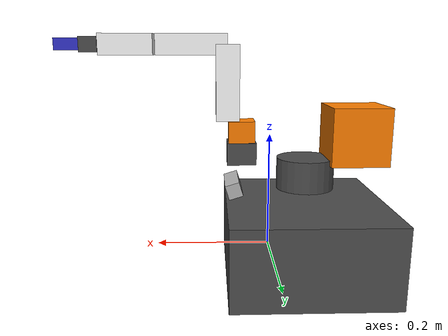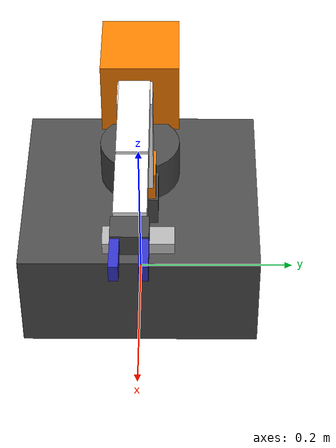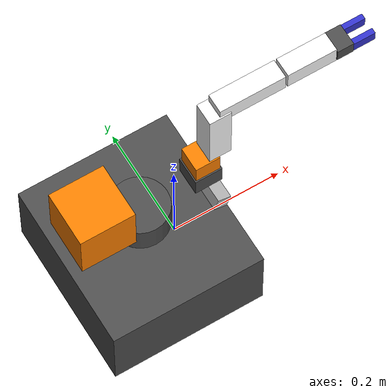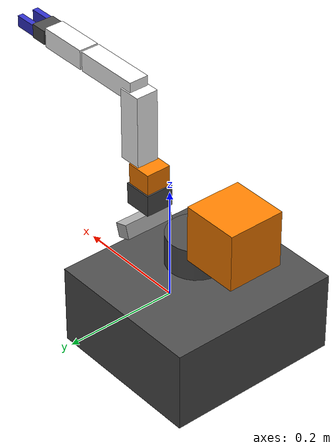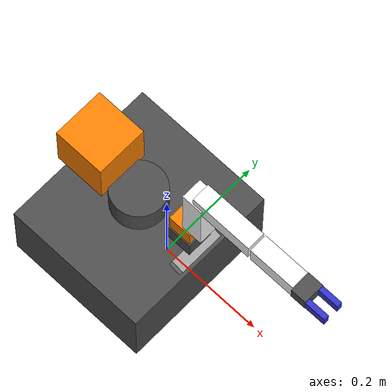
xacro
<?xml version="1.0"?>
<robot xmlns:xacro="http://www.ros.org/wiki/xacro" name="litter_bot">

  <!-- Arguments -->
  <xacro:arg name="use_sim" default="true"/>
  <xacro:arg name="use_camera" default="true"/>

  <!-- Properties -->
  <xacro:property name="wheel_radius" value="0.033"/>
  <xacro:property name="wheel_width" value="0.018"/>
  <xacro:property name="wheel_separation" value="0.287"/>
  <xacro:property name="base_x" value="0.281"/>
  <xacro:property name="base_y" value="0.306"/>
  <xacro:property name="base_z" value="0.141"/>

  <!-- Materials -->
  <material name="black">
    <color rgba="0.0 0.0 0.0 1.0"/>
  </material>
  <material name="dark_grey">
    <color rgba="0.3 0.3 0.3 1.0"/>
  </material>
  <material name="light_grey">
    <color rgba="0.7 0.7 0.7 1.0"/>
  </material>
  <material name="white">
    <color rgba="1.0 1.0 1.0 1.0"/>
  </material>
  <material name="orange">
    <color rgba="1.0 0.5 0.0 1.0"/>
  </material>
  <material name="blue">
    <color rgba="0.2 0.2 0.8 1.0"/>
  </material>

  <!-- ==================== BASE FOOTPRINT ==================== -->
  <link name="base_footprint"/>

  <joint name="base_joint" type="fixed">
    <parent link="base_footprint"/>
    <child link="base_link"/>
    <origin xyz="0 0 0.010" rpy="0 0 0"/>
  </joint>

  <!-- ==================== BASE LINK ==================== -->
  <link name="base_link">
    <visual>
      <origin xyz="-0.064 0 0.0" rpy="0 0 0"/>
      <geometry>
        <box size="${base_x} ${base_y} ${base_z}"/>
      </geometry>
      <material name="dark_grey"/>
    </visual>
    <collision>
      <origin xyz="-0.064 0 0.047" rpy="0 0 0"/>
      <geometry>
        <box size="${base_x} ${base_y} ${base_z}"/>
      </geometry>
    </collision>
    <inertial>
      <origin xyz="0 0 0" rpy="0 0 0"/>
      <mass value="1.3729096"/>
      <inertia ixx="0.0142" ixy="0" ixz="0" iyy="0.0142" iyz="0" izz="0.0238"/>
    </inertial>
  </link>

  <!-- ==================== WHEELS ==================== -->
  <xacro:macro name="wheel" params="prefix y_offset">
    <link name="${prefix}_wheel_link">
      <visual>
        <origin xyz="0 0 0" rpy="1.57 0 0"/>
        <geometry>
          <cylinder radius="${wheel_radius}" length="${wheel_width}"/>
        </geometry>
        <material name="black"/>
      </visual>
      <collision>
        <origin xyz="0 0 0" rpy="1.57 0 0"/>
        <geometry>
          <cylinder radius="${wheel_radius}" length="${wheel_width}"/>
        </geometry>
      </collision>
      <inertial>
        <origin xyz="0 0 0"/>
        <mass value="0.1"/>
        <inertia ixx="0.00005" ixy="0" ixz="0" iyy="0.00005" iyz="0" izz="0.00009"/>
      </inertial>
    </link>

    <joint name="${prefix}_wheel_joint" type="continuous">
      <parent link="base_link"/>
      <child link="${prefix}_wheel_link"/>
      <origin xyz="0 ${y_offset} 0.023" rpy="0 0 0"/>
      <axis xyz="0 1 0"/>
    </joint>
  </xacro:macro>

  <xacro:wheel prefix="left" y_offset="${wheel_separation/2}"/>
  <xacro:wheel prefix="right" y_offset="${-wheel_separation/2}"/>

  <!-- ==================== CASTER WHEEL ==================== -->
  <link name="caster_link">
    <visual>
      <origin xyz="0 0 0" rpy="0 0 0"/>
      <geometry>
        <sphere radius="0.01"/>
      </geometry>
      <material name="dark_grey"/>
    </visual>
    <collision>
      <origin xyz="0 0 0" rpy="0 0 0"/>
      <geometry>
        <sphere radius="0.01"/>
      </geometry>
    </collision>
    <inertial>
      <origin xyz="0 0 0"/>
      <mass value="0.01"/>
      <inertia ixx="0.000001" ixy="0" ixz="0" iyy="0.000001" iyz="0" izz="0.000001"/>
    </inertial>
  </link>

  <joint name="caster_joint" type="fixed">
    <parent link="base_link"/>
    <child link="caster_link"/>
    <origin xyz="-0.177 0 -0.013" rpy="0 0 0"/>
  </joint>

  <!-- ==================== LIDAR ==================== -->
  <link name="base_scan">
    <visual>
      <origin xyz="0 0 0" rpy="0 0 0"/>
      <geometry>
        <cylinder radius="0.0508" length="0.055"/>
      </geometry>
      <material name="dark_grey"/>
    </visual>
    <collision>
      <origin xyz="0 0 0" rpy="0 0 0"/>
      <geometry>
        <cylinder radius="0.0508" length="0.055"/>
      </geometry>
    </collision>
    <inertial>
      <origin xyz="0 0 0"/>
      <mass value="0.125"/>
      <inertia ixx="0.00008" ixy="0" ixz="0" iyy="0.00008" iyz="0" izz="0.00012"/>
    </inertial>
  </link>

  <joint name="scan_joint" type="fixed">
    <parent link="base_link"/>
    <child link="base_scan"/>
    <origin xyz="-0.064 0 0.122" rpy="0 0 0"/>
  </joint>

  <!-- ==================== IMU ==================== -->
  <link name="imu_link"/>

  <joint name="imu_joint" type="fixed">
    <parent link="base_link"/>
    <child link="imu_link"/>
    <origin xyz="0 0 0.068" rpy="0 0 0"/>
  </joint>

  <!-- ==================== CAMERA (RealSense D435i) ==================== -->
  <xacro:if value="$(arg use_camera)">
    <link name="camera_link">
      <visual>
        <origin xyz="0 0 0" rpy="0 0 0"/>
        <geometry>
          <box size="0.025 0.09 0.025"/>
        </geometry>
        <material name="light_grey"/>
      </visual>
      <collision>
        <origin xyz="0 0 0" rpy="0 0 0"/>
        <geometry>
          <box size="0.025 0.09 0.025"/>
        </geometry>
      </collision>
      <inertial>
        <origin xyz="0 0 0"/>
        <mass value="0.072"/>
        <inertia ixx="0.00001" ixy="0" ixz="0" iyy="0.00001" iyz="0" izz="0.00001"/>
      </inertial>
    </link>

    <joint name="camera_joint" type="fixed">
      <parent link="base_link"/>
      <child link="camera_link"/>
      <origin xyz="0.064 0 0.1" rpy="0 0.3 0"/>
    </joint>

    <link name="camera_rgb_frame"/>
    <joint name="camera_rgb_joint" type="fixed">
      <parent link="camera_link"/>
      <child link="camera_rgb_frame"/>
      <origin xyz="0 0 0" rpy="0 0 0"/>
    </joint>

    <link name="camera_depth_frame"/>
    <joint name="camera_depth_joint" type="fixed">
      <parent link="camera_link"/>
      <child link="camera_depth_frame"/>
      <origin xyz="0 0.0175 0" rpy="0 0 0"/>
    </joint>

    <link name="camera_rgb_optical_frame"/>
    <joint name="camera_rgb_optical_joint" type="fixed">
      <parent link="camera_rgb_frame"/>
      <child link="camera_rgb_optical_frame"/>
      <origin xyz="0 0 0" rpy="-1.5708 0 -1.5708"/>
    </joint>

    <link name="camera_depth_optical_frame"/>
    <joint name="camera_depth_optical_joint" type="fixed">
      <parent link="camera_depth_frame"/>
      <child link="camera_depth_optical_frame"/>
      <origin xyz="0 0 0" rpy="-1.5708 0 -1.5708"/>
    </joint>
  </xacro:if>

  <!-- ==================== OPENMANIPULATOR-X ARM ==================== -->
  <!-- Arm base mount on top of the robot -->
  <link name="arm_base_link">
    <visual>
      <origin xyz="0 0 0.019" rpy="0 0 0"/>
      <geometry>
        <box size="0.05 0.05 0.038"/>
      </geometry>
      <material name="dark_grey"/>
    </visual>
    <collision>
      <origin xyz="0 0 0.019" rpy="0 0 0"/>
      <geometry>
        <box size="0.05 0.05 0.038"/>
      </geometry>
    </collision>
    <inertial>
      <origin xyz="0 0 0.019"/>
      <mass value="0.1"/>
      <inertia ixx="0.00005" ixy="0" ixz="0" iyy="0.00005" iyz="0" izz="0.00005"/>
    </inertial>
  </link>

  <joint name="arm_base_joint" type="fixed">
    <parent link="base_link"/>
    <child link="arm_base_link"/>
    <origin xyz="0.05 0 0.141" rpy="0 0 0"/>
  </joint>

  <!-- Link 1 -->
  <link name="link1">
    <visual>
      <origin xyz="0 0 0.0185" rpy="0 0 0"/>
      <geometry>
        <box size="0.045 0.045 0.037"/>
      </geometry>
      <material name="orange"/>
    </visual>
    <collision>
      <origin xyz="0 0 0.0185" rpy="0 0 0"/>
      <geometry>
        <box size="0.045 0.045 0.037"/>
      </geometry>
    </collision>
    <inertial>
      <origin xyz="0 0 0.0185"/>
      <mass value="0.098"/>
      <inertia ixx="0.00002" ixy="0" ixz="0" iyy="0.00002" iyz="0" izz="0.00002"/>
    </inertial>
  </link>

  <joint name="joint1" type="revolute">
    <parent link="arm_base_link"/>
    <child link="link1"/>
    <origin xyz="0 0 0.038" rpy="0 0 0"/>
    <axis xyz="0 0 1"/>
    <limit lower="-2.827" upper="2.827" effort="1.0" velocity="4.8"/>
  </joint>

  <!-- Link 2 -->
  <link name="link2">
    <visual>
      <origin xyz="0.024 0 0.064" rpy="0 0 0"/>
      <geometry>
        <box size="0.04 0.04 0.128"/>
      </geometry>
      <material name="white"/>
    </visual>
    <collision>
      <origin xyz="0.024 0 0.064" rpy="0 0 0"/>
      <geometry>
        <box size="0.04 0.04 0.128"/>
      </geometry>
    </collision>
    <inertial>
      <origin xyz="0.024 0 0.064"/>
      <mass value="0.138"/>
      <inertia ixx="0.00024" ixy="0" ixz="0" iyy="0.00024" iyz="0" izz="0.00002"/>
    </inertial>
  </link>

  <joint name="joint2" type="revolute">
    <parent link="link1"/>
    <child link="link2"/>
    <origin xyz="0 0 0.037" rpy="0 0 0"/>
    <axis xyz="0 1 0"/>
    <limit lower="-1.79" upper="1.57" effort="1.0" velocity="4.8"/>
  </joint>

  <!-- Link 3 -->
  <link name="link3">
    <visual>
      <origin xyz="0.06 0 0" rpy="0 0 0"/>
      <geometry>
        <box size="0.12 0.035 0.035"/>
      </geometry>
      <material name="white"/>
    </visual>
    <collision>
      <origin xyz="0.06 0 0" rpy="0 0 0"/>
      <geometry>
        <box size="0.12 0.035 0.035"/>
      </geometry>
    </collision>
    <inertial>
      <origin xyz="0.06 0 0"/>
      <mass value="0.098"/>
      <inertia ixx="0.00001" ixy="0" ixz="0" iyy="0.00012" iyz="0" izz="0.00012"/>
    </inertial>
  </link>

  <joint name="joint3" type="revolute">
    <parent link="link2"/>
    <child link="link3"/>
    <origin xyz="0.024 0 0.128" rpy="0 0 0"/>
    <axis xyz="0 1 0"/>
    <limit lower="-0.94" upper="1.39" effort="1.0" velocity="4.8"/>
  </joint>

  <!-- Link 4 -->
  <link name="link4">
    <visual>
      <origin xyz="0.045 0 0" rpy="0 0 0"/>
      <geometry>
        <box size="0.09 0.035 0.035"/>
      </geometry>
      <material name="white"/>
    </visual>
    <collision>
      <origin xyz="0.045 0 0" rpy="0 0 0"/>
      <geometry>
        <box size="0.09 0.035 0.035"/>
      </geometry>
    </collision>
    <inertial>
      <origin xyz="0.045 0 0"/>
      <mass value="0.072"/>
      <inertia ixx="0.000007" ixy="0" ixz="0" iyy="0.00006" iyz="0" izz="0.00006"/>
    </inertial>
  </link>

  <joint name="joint4" type="revolute">
    <parent link="link3"/>
    <child link="link4"/>
    <origin xyz="0.124 0 0" rpy="0 0 0"/>
    <axis xyz="0 1 0"/>
    <limit lower="-1.79" upper="2.04" effort="1.0" velocity="4.8"/>
  </joint>

  <!-- Gripper Base -->
  <link name="gripper_base_link">
    <visual>
      <origin xyz="0.015 0 0" rpy="0 0 0"/>
      <geometry>
        <box size="0.03 0.04 0.025"/>
      </geometry>
      <material name="dark_grey"/>
    </visual>
    <collision>
      <origin xyz="0.015 0 0" rpy="0 0 0"/>
      <geometry>
        <box size="0.03 0.04 0.025"/>
      </geometry>
    </collision>
    <inertial>
      <origin xyz="0.015 0 0"/>
      <mass value="0.03"/>
      <inertia ixx="0.000002" ixy="0" ixz="0" iyy="0.000003" iyz="0" izz="0.000003"/>
    </inertial>
  </link>

  <joint name="gripper_base_joint" type="fixed">
    <parent link="link4"/>
    <child link="gripper_base_link"/>
    <origin xyz="0.09 0 0" rpy="0 0 0"/>
  </joint>

  <!-- Left Gripper Finger -->
  <link name="gripper_left_link">
    <visual>
      <origin xyz="0.02 0 0" rpy="0 0 0"/>
      <geometry>
        <box size="0.04 0.01 0.02"/>
      </geometry>
      <material name="blue"/>
    </visual>
    <collision>
      <origin xyz="0.02 0 0" rpy="0 0 0"/>
      <geometry>
        <box size="0.04 0.01 0.02"/>
      </geometry>
    </collision>
    <inertial>
      <origin xyz="0.02 0 0"/>
      <mass value="0.01"/>
      <inertia ixx="0.0000003" ixy="0" ixz="0" iyy="0.0000015" iyz="0" izz="0.0000015"/>
    </inertial>
  </link>

  <joint name="gripper_left_joint" type="prismatic">
    <parent link="gripper_base_link"/>
    <child link="gripper_left_link"/>
    <origin xyz="0.03 0.015 0" rpy="0 0 0"/>
    <axis xyz="0 1 0"/>
    <limit lower="-0.01" upper="0.019" effort="1.0" velocity="1.0"/>
  </joint>

  <!-- Right Gripper Finger -->
  <link name="gripper_right_link">
    <visual>
      <origin xyz="0.02 0 0" rpy="0 0 0"/>
      <geometry>
        <box size="0.04 0.01 0.02"/>
      </geometry>
      <material name="blue"/>
    </visual>
    <collision>
      <origin xyz="0.02 0 0" rpy="0 0 0"/>
      <geometry>
        <box size="0.04 0.01 0.02"/>
      </geometry>
    </collision>
    <inertial>
      <origin xyz="0.02 0 0"/>
      <mass value="0.01"/>
      <inertia ixx="0.0000003" ixy="0" ixz="0" iyy="0.0000015" iyz="0" izz="0.0000015"/>
    </inertial>
  </link>

  <joint name="gripper_right_joint" type="prismatic">
    <parent link="gripper_base_link"/>
    <child link="gripper_right_link"/>
    <origin xyz="0.03 -0.015 0" rpy="0 0 0"/>
    <axis xyz="0 -1 0"/>
    <limit lower="-0.01" upper="0.019" effort="1.0" velocity="1.0"/>
  </joint>

  <!-- End Effector Link (for MoveIt) -->
  <link name="end_effector_link"/>

  <joint name="end_effector_joint" type="fixed">
    <parent link="gripper_base_link"/>
    <child link="end_effector_link"/>
    <origin xyz="0.06 0 0" rpy="0 0 0"/>
  </joint>

  <!-- Collection Bin -->
  <link name="collection_bin_link">
    <visual>
      <origin xyz="0 0 0.05" rpy="0 0 0"/>
      <geometry>
        <box size="0.1 0.1 0.1"/>
      </geometry>
      <material name="orange"/>
    </visual>
    <collision>
      <origin xyz="0 0 0.05" rpy="0 0 0"/>
      <geometry>
        <box size="0.1 0.1 0.1"/>
      </geometry>
    </collision>
    <inertial>
      <origin xyz="0 0 0.05"/>
      <mass value="0.05"/>
      <inertia ixx="0.00008" ixy="0" ixz="0" iyy="0.00008" iyz="0" izz="0.00008"/>
    </inertial>
  </link>

  <joint name="collection_bin_joint" type="fixed">
    <parent link="base_link"/>
    <child link="collection_bin_link"/>
    <origin xyz="-0.15 0 0.141" rpy="0 0 0"/>
  </joint>

  <!-- ==================== GAZEBO PLUGINS ==================== -->
  <xacro:if value="$(arg use_sim)">
    <!-- Differential Drive -->
    <gazebo>
      <plugin name="diff_drive" filename="libgazebo_ros_diff_drive.so">
        <ros>
          <namespace>/</namespace>
        </ros>
        <update_rate>30</update_rate>
        <left_joint>left_wheel_joint</left_joint>
        <right_joint>right_wheel_joint</right_joint>
        <wheel_separation>${wheel_separation}</wheel_separation>
        <wheel_diameter>${wheel_radius*2}</wheel_diameter>
        <max_wheel_torque>20</max_wheel_torque>
        <max_wheel_acceleration>1.0</max_wheel_acceleration>
        <command_topic>cmd_vel</command_topic>
        <publish_odom>true</publish_odom>
        <publish_odom_tf>true</publish_odom_tf>
        <publish_wheel_tf>false</publish_wheel_tf>
        <odometry_topic>odom</odometry_topic>
        <odometry_frame>odom</odometry_frame>
        <robot_base_frame>base_footprint</robot_base_frame>
      </plugin>
    </gazebo>

    <!-- LIDAR -->
    <gazebo reference="base_scan">
      <sensor type="ray" name="lds_lfcd_sensor">
        <pose>0 0 0 0 0 0</pose>
        <visualize>false</visualize>
        <update_rate>5</update_rate>
        <ray>
          <scan>
            <horizontal>
              <samples>360</samples>
              <resolution>1</resolution>
              <min_angle>0.0</min_angle>
              <max_angle>6.28319</max_angle>
            </horizontal>
          </scan>
          <range>
            <min>0.12</min>
            <max>3.5</max>
            <resolution>0.015</resolution>
          </range>
          <noise>
            <type>gaussian</type>
            <mean>0.0</mean>
            <stddev>0.01</stddev>
          </noise>
        </ray>
        <plugin name="gazebo_ros_lds_lfcd_controller" filename="libgazebo_ros_ray_sensor.so">
          <ros>
            <namespace>/</namespace>
            <remapping>~/out:=scan</remapping>
          </ros>
          <output_type>sensor_msgs/LaserScan</output_type>
          <frame_name>base_scan</frame_name>
        </plugin>
      </sensor>
    </gazebo>

    <!-- IMU -->
    <gazebo reference="imu_link">
      <sensor type="imu" name="imu">
        <always_on>true</always_on>
        <update_rate>200</update_rate>
        <imu>
          <angular_velocity>
            <x>
              <noise type="gaussian">
                <mean>0.0</mean>
                <stddev>2e-4</stddev>
              </noise>
            </x>
            <y>
              <noise type="gaussian">
                <mean>0.0</mean>
                <stddev>2e-4</stddev>
              </noise>
            </y>
            <z>
              <noise type="gaussian">
                <mean>0.0</mean>
                <stddev>2e-4</stddev>
              </noise>
            </z>
          </angular_velocity>
          <linear_acceleration>
            <x>
              <noise type="gaussian">
                <mean>0.0</mean>
                <stddev>1.7e-2</stddev>
              </noise>
            </x>
            <y>
              <noise type="gaussian">
                <mean>0.0</mean>
                <stddev>1.7e-2</stddev>
              </noise>
            </y>
            <z>
              <noise type="gaussian">
                <mean>0.0</mean>
                <stddev>1.7e-2</stddev>
              </noise>
            </z>
          </linear_acceleration>
        </imu>
        <plugin name="imu_plugin" filename="libgazebo_ros_imu_sensor.so">
          <ros>
            <namespace>/</namespace>
            <remapping>~/out:=imu</remapping>
          </ros>
          <initial_orientation_as_reference>false</initial_orientation_as_reference>
          <frame_name>imu_link</frame_name>
        </plugin>
      </sensor>
    </gazebo>

    <!-- RGB-D Camera (RealSense D435i simulation) -->
    <xacro:if value="$(arg use_camera)">
      <gazebo reference="camera_link">
        <sensor type="depth" name="realsense_d435i">
          <update_rate>15</update_rate>
          <camera>
            <horizontal_fov>1.211</horizontal_fov>
            <image>
              <width>640</width>
              <height>480</height>
              <format>R8G8B8</format>
            </image>
            <depth_camera>
              <output>depths</output>
            </depth_camera>
            <clip>
              <near>0.1</near>
              <far>8.0</far>
            </clip>
            <noise>
              <type>gaussian</type>
              <mean>0.0</mean>
              <stddev>0.005</stddev>
            </noise>
          </camera>
          <plugin name="depth_camera_plugin" filename="libgazebo_ros_camera.so">
            <ros>
              <namespace>/camera</namespace>
              <remapping>image_raw:=color/image_raw</remapping>
              <remapping>camera_info:=color/camera_info</remapping>
              <remapping>depth/image_raw:=depth/image_raw</remapping>
              <remapping>depth/camera_info:=depth/camera_info</remapping>
              <remapping>points:=depth/points</remapping>
            </ros>
            <camera_name>realsense</camera_name>
            <frame_name>camera_depth_optical_frame</frame_name>
            <min_depth>0.1</min_depth>
            <max_depth>8.0</max_depth>
          </plugin>
        </sensor>
      </gazebo>
    </xacro:if>

    <!-- Joint State Publisher for arm -->
    <gazebo>
      <plugin name="gazebo_ros_joint_state_publisher" filename="libgazebo_ros_joint_state_publisher.so">
        <ros>
          <namespace>/</namespace>
          <remapping>~/out:=joint_states</remapping>
        </ros>
        <update_rate>50</update_rate>
        <joint_name>joint1</joint_name>
        <joint_name>joint2</joint_name>
        <joint_name>joint3</joint_name>
        <joint_name>joint4</joint_name>
        <joint_name>gripper_left_joint</joint_name>
        <joint_name>gripper_right_joint</joint_name>
      </plugin>
    </gazebo>

    <!-- Joint Position Controller for arm -->
    <gazebo>
      <plugin name="gazebo_ros_joint_pose_trajectory" filename="libgazebo_ros_joint_pose_trajectory.so">
        <ros>
          <namespace>/</namespace>
        </ros>
        <update_rate>50</update_rate>
      </plugin>
    </gazebo>
  </xacro:if>

</robot>
